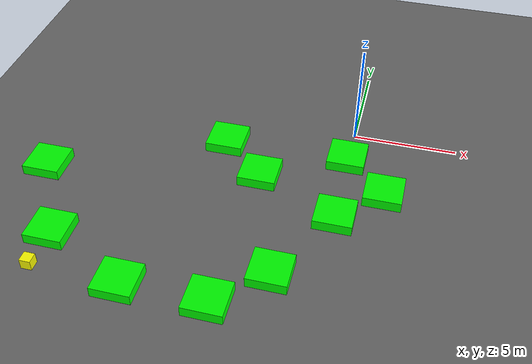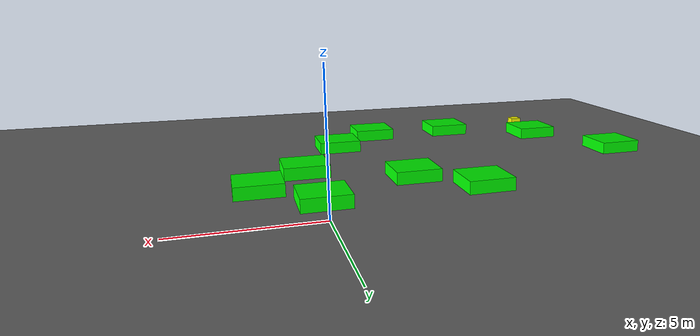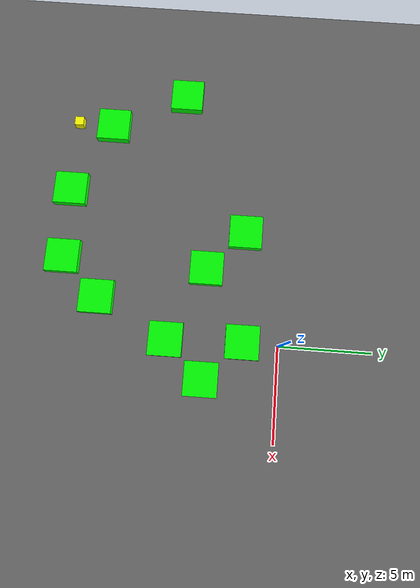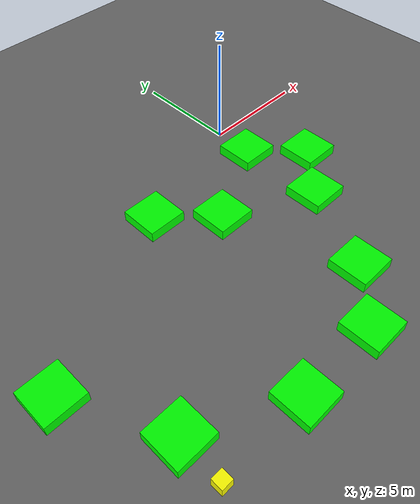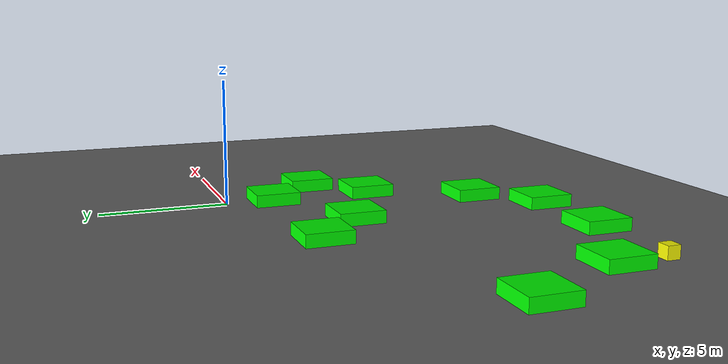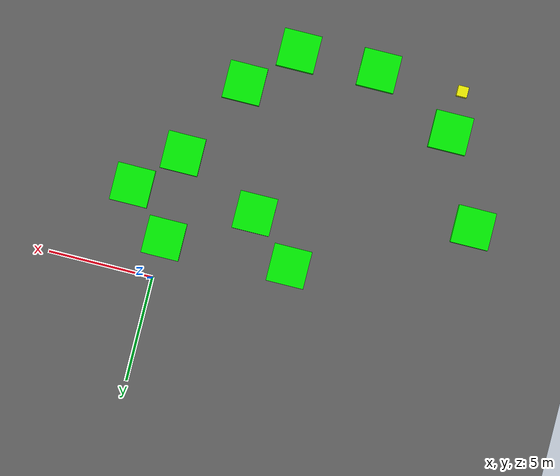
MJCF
<mujoco model="lvl4_standard_obs10_d3long_seed37">
    <compiler angle="degree" coordinate="local" inertiafromgeom="true"/>
    <option integrator="RK4" timestep="0.01"/>

    <asset>
        <texture builtin="gradient" height="100" rgb1="0.6 0.8 1" rgb2="0 0 0" type="skybox" width="100"/>
        <texture name="floor_texture" type="2d" builtin="checker" width="100" height="100" rgb1="0 0 0" rgb2="0.8 0.8 0.8"/>
        <material name="MatPlane" reflectance="0.5" shininess="1" specular="1" texrepeat="10 10" texture="floor_texture"/>
    </asset>

    <!-- Excluding the contact between the agent and the goal, and the agent and the floor -->
    <contact>
        <exclude body1="agent" body2="goal"/>
        <exclude body1 = "agent" body2 = "floor"/>
    </contact>

    <extension>
        <plugin plugin = "mujoco.pid">
            <instance name = "pid1">
                <config key="kp" value="2"/>
                <config key="ki" value="0"/>
                <config key="kd" value="55"/>
            </instance>
        </plugin>
    </extension>

    <worldbody>
        <light cutoff="100" diffuse="1 1 1" dir="-0 0 -1.3" directional="true" exponent="1" pos="0 0 1.3" specular=".1 .1 .1"/>
        <body name="floor" pos="0 0 0">
            <geom name="floor_geom" type="plane" size="20 20 0.1" material="MatPlane"/>
        </body>

                <body name="goal" pos="0.0000 0.0000 0">
            <geom name="goal_geom" type="plane" size="0.5 0.5 1" pos="0 0 0" rgba="1 0 0 1"/>
        </body>

                <body name="agent" pos="-12.0000 -12.0000 0.250">
            <joint name="j1" type="slide" axis ="1 0 0 "/>
            <joint name="j2" type="slide" axis ="0 1 0 "/>
            <geom name="agent_geom" type="box" size="0.25 0.25 0.250" rgba="1 1 0 1"/>
        </body>

        <body name="obstacle1" pos="-6.0942 -2.0723 0.250">  <geom name="obstacle1_geom" type="box" size="0.9000 0.9000 0.250" rgba="0 1 0 1"/></body>
        <body name="obstacle2" pos="-0.0927 -1.9164 0.250">  <geom name="obstacle2_geom" type="box" size="0.9000 0.9000 0.250" rgba="0 1 0 1"/></body>
        <body name="obstacle3" pos="-3.9400 -4.0771 0.250">  <geom name="obstacle3_geom" type="box" size="0.9000 0.9000 0.250" rgba="0 1 0 1"/></body>
        <body name="obstacle4" pos="1.9530 -3.9703 0.250">  <geom name="obstacle4_geom" type="box" size="0.9000 0.9000 0.250" rgba="0 1 0 1"/></body>
        <body name="obstacle5" pos="-14.0398 -5.9249 0.250">  <geom name="obstacle5_geom" type="box" size="0.9000 0.9000 0.250" rgba="0 1 0 1"/></body>
        <body name="obstacle6" pos="0.0144 -5.9851 0.250">  <geom name="obstacle6_geom" type="box" size="0.9000 0.9000 0.250" rgba="0 1 0 1"/></body>
        <body name="obstacle7" pos="-11.9314 -9.9974 0.250">  <geom name="obstacle7_geom" type="box" size="0.9000 0.9000 0.250" rgba="0 1 0 1"/></body>
        <body name="obstacle8" pos="-1.9956 -9.9031 0.250">  <geom name="obstacle8_geom" type="box" size="0.9000 0.9000 0.250" rgba="0 1 0 1"/></body>
        <body name="obstacle9" pos="-7.9580 -12.0012 0.250">  <geom name="obstacle9_geom" type="box" size="0.9000 0.9000 0.250" rgba="0 1 0 1"/></body>
        <body name="obstacle10" pos="-4.0930 -11.9822 0.250">  <geom name="obstacle10_geom" type="box" size="0.9000 0.9000 0.250" rgba="0 1 0 1"/></body>

    </worldbody>

    <sensor>
<!-- SENSORS -->

        <distance name="dist1" geom1="agent_geom" geom2="obstacle1_geom" cutoff="1.5"/>
        <distance name="dist2" geom1="agent_geom" geom2="obstacle2_geom" cutoff="1.5"/>
        <distance name="dist3" geom1="agent_geom" geom2="obstacle3_geom" cutoff="1.5"/>
        <distance name="dist4" geom1="agent_geom" geom2="obstacle4_geom" cutoff="1.5"/>
        <distance name="dist5" geom1="agent_geom" geom2="obstacle5_geom" cutoff="1.5"/>
        <distance name="dist6" geom1="agent_geom" geom2="obstacle6_geom" cutoff="1.5"/>
        <distance name="dist7" geom1="agent_geom" geom2="obstacle7_geom" cutoff="1.5"/>
        <distance name="dist8" geom1="agent_geom" geom2="obstacle8_geom" cutoff="1.5"/>
        <distance name="dist9" geom1="agent_geom" geom2="obstacle9_geom" cutoff="1.5"/>
        <distance name="dist10" geom1="agent_geom" geom2="obstacle10_geom" cutoff="1.5"/>
</sensor>

    <actuator>
        <plugin joint="j1" plugin="mujoco.pid" instance="pid1" />
        <plugin joint="j2" plugin="mujoco.pid" instance="pid1"/>
    </actuator>
</mujoco>
